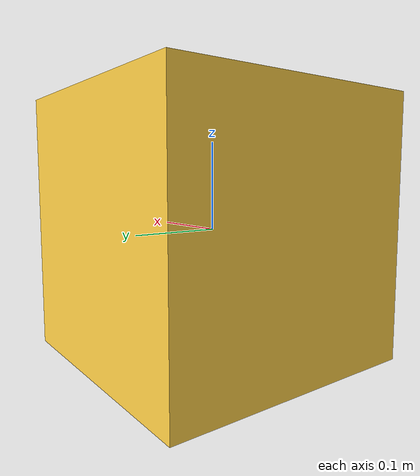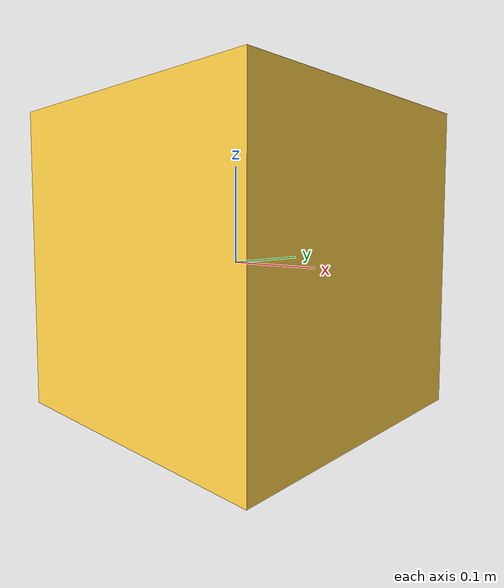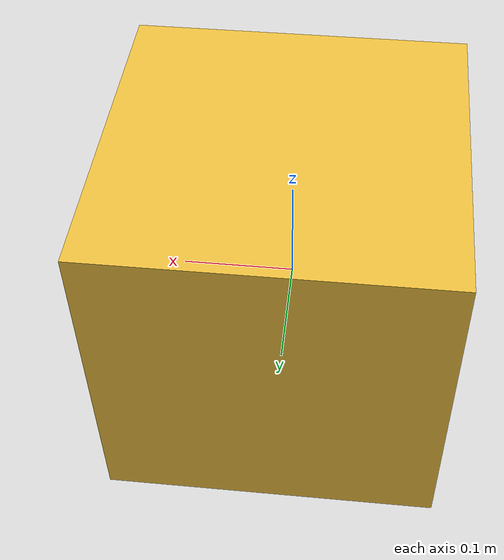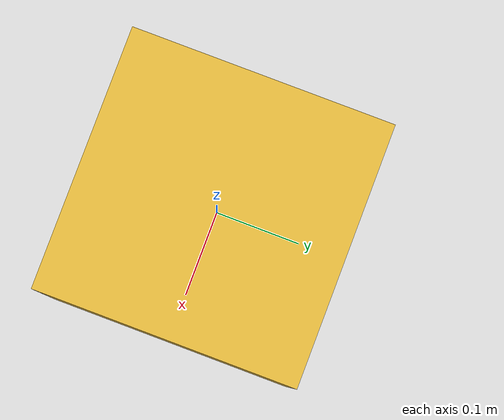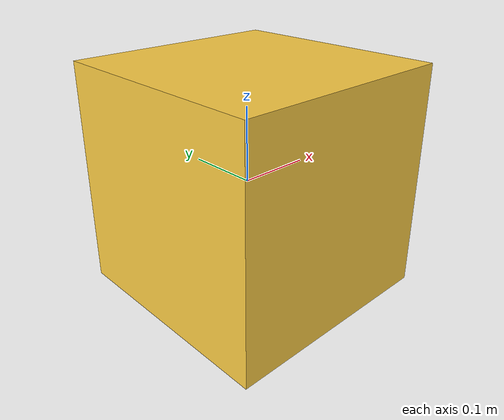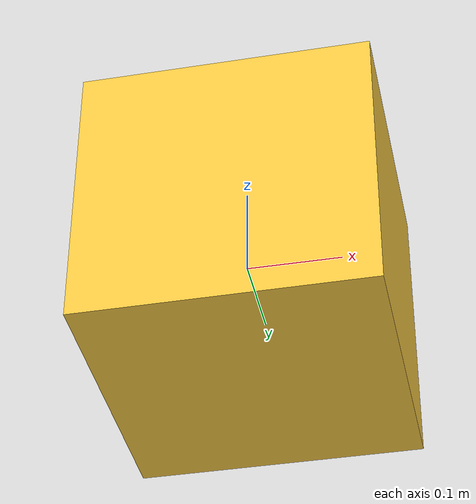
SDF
<?xml version="1.0" ?>
<!-- Standalone box model -->
<!-- Onshape origin: caja -->
<sdf version="1.9">
  <model name="box">
    <static>true</static>
    <link name="box">
      <inertial>
        <pose>0.00683064 -0.000839992 0.00308425 0 0 0</pose>
        <mass>0.46998</mass>
        <inertia>
          <ixx>0.0113666</ixx>
          <ixy>0</ixy>
          <ixz>0</ixz>
          <iyy>0.0113666</iyy>
          <iyz>0</iyz>
          <izz>0.0113666</izz>
        </inertia>
      </inertial>

      <visual name="box_visual">
        <pose>0.00683064 -0.000839992 -0.146916 0 0 0</pose>
        <geometry>
          <mesh><uri>meshes/caja.stl</uri></mesh>
        </geometry>
        <material>
          <ambient>0.980392 0.796078 0.262745 1</ambient>
          <diffuse>0.980392 0.796078 0.262745 1</diffuse>
        </material>
      </visual>
      <collision name="box_collision">
        <pose>0.00683064 -0.000839992 -0.146916 0 0 0</pose>
        <geometry>
          <mesh><uri>meshes/caja.stl</uri></mesh>
        </geometry>
      </collision>
    </link>
  </model>
</sdf>
